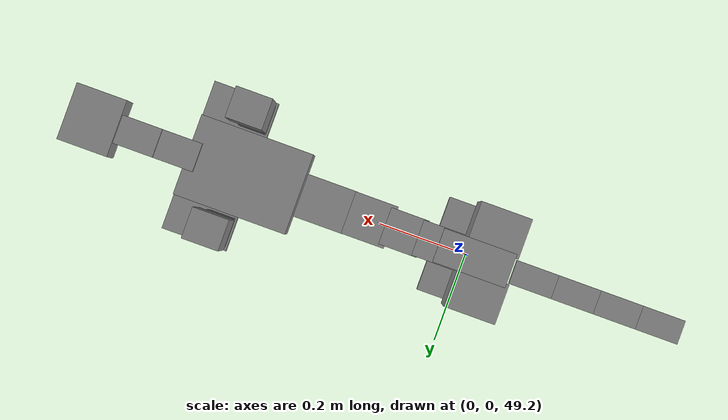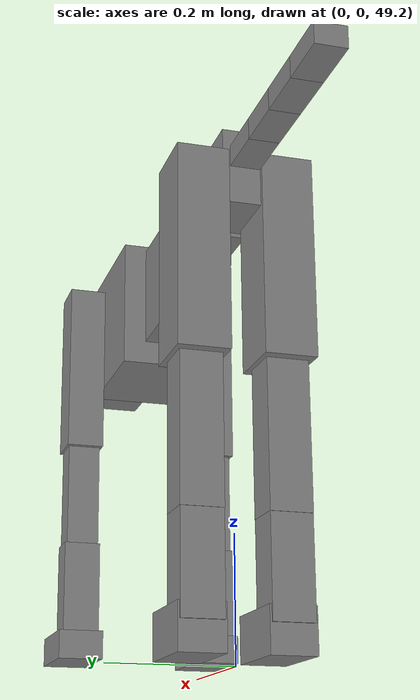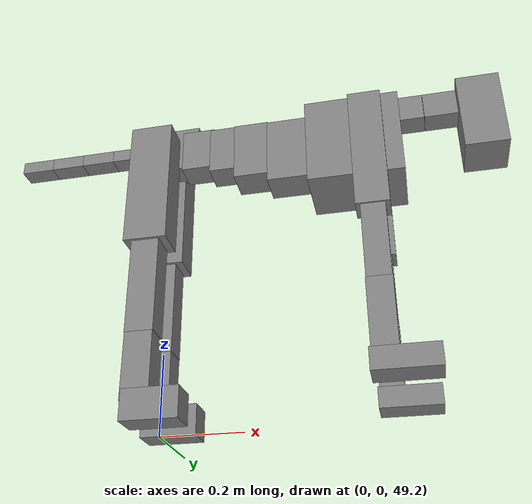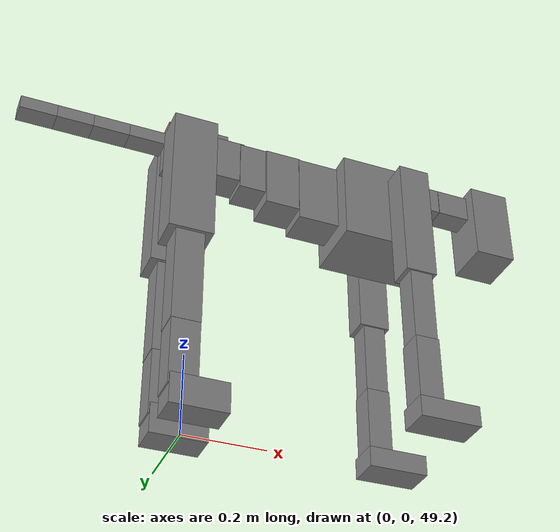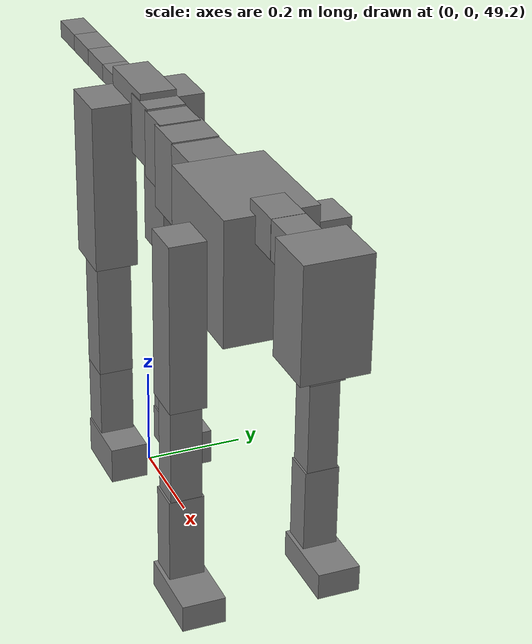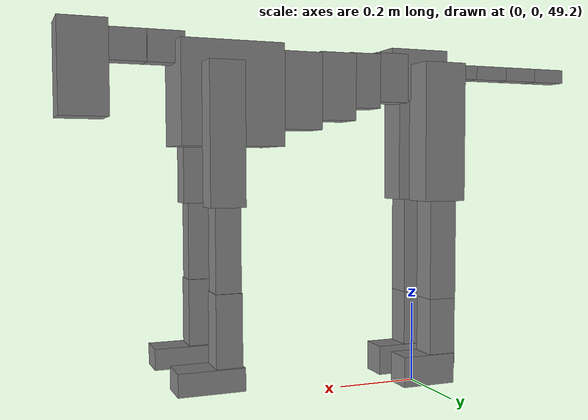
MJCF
<mujoco model="dog">

    <default>
        <joint armature="0.02" stiffness="1" damping="0.2" limited="true" />
        <geom condim="3" friction="1 0.05 0.05" margin="0.01" />
        <motor ctrllimited="true" ctrlrange="-1.0 1.0" forcelimited="true" gear="50" />
    </default>

    <compiler inertiafromgeom="true" angle="radian" />

    <option timestep="0.016" iterations="50" tolerance="1e-10" solver="Newton" jacobian="dense" cone="pyramidal" />

    <size nconmax="20000" njmax="60000" nstack="5000000" />
    <visual>
        <map force="0.1" zfar="30" />
        <rgba haze="0.15 0.25 0.35 1" />
        <quality shadowsize="2048" />
        <global offwidth="800" offheight="800" />
    </visual>

    <asset>
        <texture type="skybox" builtin="gradient" rgb1="0.3 0.5 0.7" rgb2="0 0 0" width="512" height="512" />
        <texture name="texplane" type="2d" builtin="checker" rgb1=".2 .3 .4" rgb2=".1 0.15 0.2" width="512" height="512" mark="cross" markrgb=".8 .8 .8" />
        <texture name="texgeom" type="cube" builtin="flat" mark="cross" width="127" height="1278" rgb1="0.8 0.6 0.4" rgb2="0.8 0.6 0.4" markrgb="1 1 1" random="0.01" />

        <material name="matplane" reflectance="0.3" texture="texplane" texrepeat="1 1" texuniform="true" />
        <material name="matgeom" texture="texgeom" texuniform="true" rgba="0.8 0.6 .4 1" />
    </asset>

    <worldbody>
        <geom name="floor" pos="0 0 0" size="0 0 .25" type="plane" material="matplane" condim="3" />

        <light directional="false" diffuse=".2 .2 .2" specular="0 0 0" pos="0 0 5" dir="0 0 -1" castshadow="false" />
        <light mode="targetbodycom" target="torso" directional="false" diffuse=".8 .8 .8" specular="0.3 0.3 0.3" pos="0 0 4.0" dir="0 0 -1" />

        <body name="root" pos="0 0 50">
            <freejoint name="root_1" />
            <geom type="box" pos="0 0 -0.02" size="0.0774  0.0358  0.063" density="2030" />

            <body name="spine1" pos="0.054 0 0">
                <joint name="spine1_y" axis="0 1 0" range="0 0.7" limited="true" />
                <geom type="box" pos="0.02375 0 -0.03" size="0.04375  0.0375  0.05985" density="2030" />

                <body name="spine2" pos="0.0612 0 0">
                    <joint name="spine2_y" axis="0 1 0" range="-0.15 0.15" limited="true" />
                    <geom type="box" pos="0.03555  0  -0.04" size="0.04055  0.039  0.06615" density="2030" />

                    <body name="spine3" pos="0.0730 0 0">
                        <joint name="spine3_y" axis="0 1 0" range="-0.15 0.15" limited="true" />
                        <geom type="box" pos="0.03555  0  -0.057" size="0.04555  0.0445  0.081" density="2030" />

                        <body name="spine4" pos="0.0780 0 0">
                            <joint name="spine4_y" axis="0 1 0" range="-0.15 0.15" limited="true" />
                            <geom type="box" pos="0.05265  0  -0.07" size="0.05265  0.045  0.09135" density="2030" />

                            <body name="torso" pos="0.1082 0 0">
                                <joint name="torso_y" axis="0 1 0" range="-0.15 0.15" limited="true" />
                                <geom type="box" pos="0.11925  0  -0.085" size="0.11925  0.085  0.11745" density="2030" />

                                <body name="neck1" pos="0.2160  0   0.0180">
                                    <joint name="neck1_y" axis="0 1 0" range="-1.2  -1" limited="true" />
                                    <geom type="box" pos="0.0423  0  0" size="0.0423  0.03  0.036" density="2325" />

                                    <body name="neck2" pos="0.0853  0  0">
                                        <joint name="neck2_y" axis="0 1 0" range="0.1  0" limited="true" />
                                        <geom type="box" pos="0.0423  0  0" size="0.0423  0.03  0.036" density="2325" />

                                        <body name="head" pos="0.0853  0  0">
                                            <joint name="head_y" axis="0 1 0" range="-0.3  -0.2" limited="true" />
                                            <geom type="box" pos="0.0531  0  -0.055" size="0.0531  0.06  0.1044" density="4030" />

                                        </body>
                                    </body>
                                </body>

                                <body name="front_shoulder" pos="0.156  0   -0.0480">
                                    <joint name="front_shoulder_y" axis="0 1 0" range="-1 1.5" limited="true" />
                                    <geom type="box" pos="0 0.13 -0.1312" size="0.0395  0.0337  0.1579" density="1158" />
                                    <geom type="box" pos="0 -0.13 -0.1312" size="0.0395  0.0337  0.1579" density="1158" />

                                    <body name="front_elbow" pos="0  0  -0.2624">
                                        <joint name="front_elbow_y" axis="0 1 0" range="-2 0" limited="true" />
                                        <geom type="box" pos="0 0.13 -0.1127" size="0.0286  0.0293  0.1127" density="1081" />
                                        <geom type="box" pos="0 -0.13 -0.1127" size="0.0286  0.0293  0.1127" density="1081" />

                                        <body name="front_wrist" pos="0  0  -0.2255">
                                            <joint name="front_wrist_y" axis="0 1 0" range="-0.2 0" limited="true" />
                                            <geom type="box" pos="0 0.13 -0.0823" size="0.0297  0.0330  0.0954" density="1664" />
                                            <geom type="box" pos="0 -0.13 -0.0823" size="0.0297  0.0330  0.0954" density="1664" />

                                            <body name="front_finger_end" pos="0  0  -0.1645">
                                                <joint name="front_finger_y" axis="0 1 0" range="-0.4 1" limited="true" />
                                                <geom type="box" pos="0.0405  0.13  -0.0107" size="0.0743  0.0405  0.0257" density="1515" />
                                                <geom type="box" pos="0.0405  -0.13  -0.0107" size="0.0743  0.0405  0.0257" density="1515" />

                                            </body>

                                        </body>
                                    </body>
                                </body>

                            </body>
                        </body>
                    </body>
                </body>
            </body>

            <body name="back_hip" pos="-0.03 0 -0.018">
                <joint name="back_hip_y" axis="0 1 0" range="-1.5 0.3" limited="true" />
                <geom type="box" pos="0 0.07 -0.1462" size="0.0546  0.0428  0.1690" density="1154" />
                <geom type="box" pos="0 -0.07 -0.1462" size="0.0546  0.0428  0.1690" density="1154" />

                <body name="back_knee" pos="0  0  -0.2924">
                    <joint name="back_knee_y" axis="0 1 0" range="0 2.8" limited="true" />
                    <geom type="box" pos="0 0.07 -0.1249" size="0.0351  0.0346  0.1404" density="1227" />
                    <geom type="box" pos="0 -0.07 -0.1249" size="0.0351  0.0346  0.1404" density="1227" />

                    <body name="back_ankle" pos="0  0  -0.2498">
                        <joint name="back_ankle_y" axis="0 1 0" range="-2.2 0" limited="true" />
                        <geom type="box" pos="0 0.07 -0.0844" size="0.0343  0.0343  0.0957" density="1284" />
                        <geom type="box" pos="0 -0.07 -0.0844" size="0.0343  0.0343  0.0957" density="1284" />

                        <body name="back_toe_end" pos="0  0  -0.1688">
                            <joint name="back_toe_y" axis="0 1 0" range="-0.4 1" limited="true" />
                            <geom type="box" pos="0.0374  0.07  -0.0222" size="0.0685  0.0374  0.0372" density="1515" />
                            <geom type="box" pos="0.0374  -0.07  -0.0222" size="0.0685  0.0374  0.0372" density="1515" />

                        </body>
                    </body>
                </body>
            </body>

            <body name="tail1" pos="-0.074 0 -0.006">
                <joint name="tail1_y" axis="0 1 0" range="-0.2 0.2" limited="true" />
                <geom type="box" pos="-0.0536  0  0" size="0.045  0.025  0.0175" density="1587" />

                <body name="tail2" pos="-0.09 0 0">
                    <joint name="tail2_y" axis="0 1 0" range="-0.2 0.2" limited="true" />
                    <geom type="box" pos="-0.0536  0  0" size="0.045  0.025  0.0175" density="1587" />

                    <body name="tail3" pos="-0.09 0 0">
                        <joint name="tail3_y" axis="0 1 0" range="-0.2 0.2" limited="true" />
                        <geom type="box" pos="-0.0536  0  0" size="0.045  0.025  0.0175" density="1587" />

                        <body name="tail4" pos="-0.09 0 0">
                            <joint name="tail4_y" axis="0 1 0" range="-0.2 0.2" limited="true" />
                            <geom type="box" pos="-0.0536  0  0" size="0.045  0.025  0.0175" density="1587" />

                        </body>
                    </body>
                </body>
            </body>
        </body>
    </worldbody>

    <actuator>
        <motor joint="spine1_y" forcerange="-150 150     " />
        <motor joint="spine2_y" forcerange="-150 150     " />
        <motor joint="spine3_y" forcerange="-150 150     " />
        <motor joint="spine4_y" forcerange="-150 150     " />
        <motor joint="torso_y" forcerange="-150 150     " />
        <motor joint="neck1_y" forcerange="-100 100       " />
        <motor joint="neck2_y" forcerange="-100 100       " />
        <motor joint="head_y" forcerange="-150 150       " />
        <motor joint="front_shoulder_y" forcerange="-155.87 169.02" />
        <motor joint="front_elbow_y" forcerange="-155.35 157.39" />
        <motor joint="front_wrist_y" forcerange="-129.48 134.25" />
        <motor joint="front_finger_y" forcerange="-89.82 86.27" />
        <motor joint="back_hip_y" forcerange="-384.82 386.21" />
        <motor joint="back_knee_y" forcerange="-393.58 309.73" />
        <motor joint="back_angle_y" forcerange="-248.34 199.78" />
        <motor joint="back_toe_y" forcerange="-103.99 114.86" />
        <motor joint="tail1_y" forcerange="-50 50     " />
        <motor joint="tail2_y" forcerange="-50 50     " />
        <motor joint="tail3_y" forcerange="-50 50     " />
        <motor joint="tail4_y" forcerange="-50 50     " />
    </actuator>
</mujoco>
